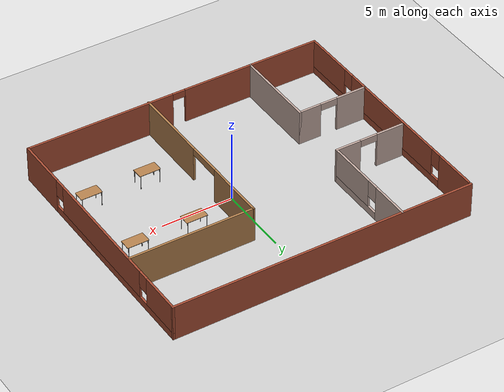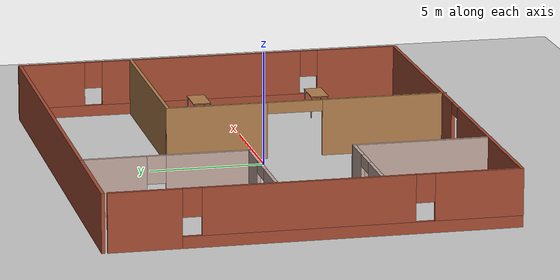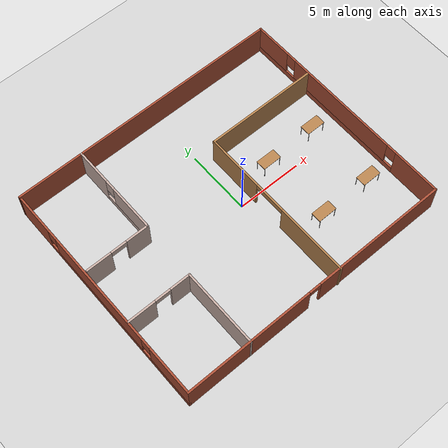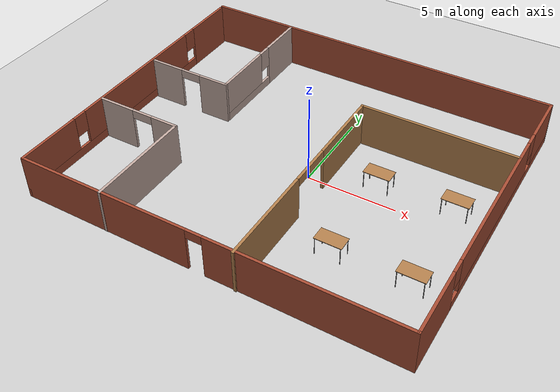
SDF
<sdf version="1.6">
 <world name="default">
  <model name="ground_plane">
   <static>1</static>
   <link name="link">
    <collision name="collision">
     <geometry><plane><normal>0 0 1</normal><size>100 100</size></plane></geometry>
     <surface><friction><ode><mu>100</mu><mu2>50</mu2></ode></friction></surface>
    </collision>
    <visual name="visual">
     <cast_shadows>0</cast_shadows>
     <geometry><plane><normal>0 0 1</normal><size>100 100</size></plane></geometry>
     <material>
      <script><uri>file://media/materials/scripts/gazebo.material</uri><name>Gazebo/Grey</name></script>
     </material>
    </visual>
   </link>
  </model>
  <model name="jun">
   <pose>-0.890868 0.38527 0 0 -0 0</pose>
   <link name="Wall_10">
    <pose>-8.06347 -2.80146 0 0 -0 0</pose>
    <visual name="Wall_10_Visual_0">
     <pose>-1.41738 0 1.25 0 -0 0</pose>
     <geometry><box><size>2.16523 0.15 2.5</size></box></geometry>
     <material>
      <script><uri>file://media/materials/scripts/gazebo.material</uri><name>Gazebo/Grey</name></script>
      <ambient>0.760784 0.662745 0.627451 1</ambient>
     </material>
     <meta><layer>0</layer></meta>
    </visual>
    <collision name="Wall_10_Collision_0">
     <geometry><box><size>2.16523 0.15 2.5</size></box></geometry>
     <pose>-1.41738 0 1.25 0 -0 0</pose>
    </collision>
    <visual name="Wall_10_Visual_1">
     <pose>1.69092 0 1.25 0 -0 0</pose>
     <geometry><box><size>1.61816 0.15 2.5</size></box></geometry>
     <material>
      <script><uri>file://media/materials/scripts/gazebo.material</uri><name>Gazebo/Grey</name></script>
      <ambient>0.760784 0.662745 0.627451 1</ambient>
     </material>
     <meta><layer>0</layer></meta>
    </visual>
    <collision name="Wall_10_Collision_1">
     <geometry><box><size>1.61816 0.15 2.5</size></box></geometry>
     <pose>1.69092 0 1.25 0 -0 0</pose>
    </collision>
    <visual name="Wall_10_Visual_2">
     <pose>0.273537 0 2.25 0 -0 0</pose>
     <geometry><box><size>1.21661 0.15 0.5</size></box></geometry>
     <material>
      <script><uri>file://media/materials/scripts/gazebo.material</uri><name>Gazebo/Grey</name></script>
      <ambient>0.760784 0.662745 0.627451 1</ambient>
     </material>
     <meta><layer>0</layer></meta>
    </visual>
    <collision name="Wall_10_Collision_2">
     <geometry><box><size>1.21661 0.15 0.5</size></box></geometry>
     <pose>0.273537 0 2.25 0 -0 0</pose>
    </collision>
   </link>
   <link name="Wall_11">
    <collision name="Wall_11_Collision">
     <geometry><box><size>6 0.15 2.5</size></box></geometry>
     <pose>0 0 1.25 0 -0 0</pose>
    </collision>
    <visual name="Wall_11_Visual">
     <pose>0 0 1.25 0 -0 0</pose>
     <geometry><box><size>6 0.15 2.5</size></box></geometry>
     <material>
      <script><uri>file://media/materials/scripts/gazebo.material</uri><name>Gazebo/Grey</name></script>
      <ambient>0.760784 0.662745 0.627451 1</ambient>
     </material>
     <meta><layer>0</layer></meta>
    </visual>
    <pose>-5.63847 -5.72646 0 0 0 -1.5708</pose>
   </link>
   <link name="Wall_13">
    <pose>1.87863 -2.53314 0 0 -0 1.5708</pose>
    <visual name="Wall_13_Visual_0">
     <pose>-3.458 0 1.25 0 -0 0</pose>
     <geometry><box><size>5.58399 0.15 2.5</size></box></geometry>
     <material>
      <script><uri>file://media/materials/scripts/gazebo.material</uri><name>Gazebo/Wood</name></script>
      <ambient>1 1 1 1</ambient>
     </material>
     <meta><layer>0</layer></meta>
    </visual>
    <collision name="Wall_13_Collision_0">
     <geometry><box><size>5.58399 0.15 2.5</size></box></geometry>
     <pose>-3.458 0 1.25 0 -0 0</pose>
    </collision>
    <visual name="Wall_13_Visual_1">
     <pose>4.01593 0 1.25 0 -0 0</pose>
     <geometry><box><size>4.46814 0.15 2.5</size></box></geometry>
     <material>
      <script><uri>file://media/materials/scripts/gazebo.material</uri><name>Gazebo/Wood</name></script>
      <ambient>1 1 1 1</ambient>
     </material>
     <meta><layer>0</layer></meta>
    </visual>
    <collision name="Wall_13_Collision_1">
     <geometry><box><size>4.46814 0.15 2.5</size></box></geometry>
     <pose>4.01593 0 1.25 0 -0 0</pose>
    </collision>
    <visual name="Wall_13_Visual_2">
     <pose>0.557927 0 2.25 0 -0 0</pose>
     <geometry><box><size>2.44787 0.15 0.5</size></box></geometry>
     <material>
      <script><uri>file://media/materials/scripts/gazebo.material</uri><name>Gazebo/Wood</name></script>
      <ambient>1 1 1 1</ambient>
     </material>
     <meta><layer>0</layer></meta>
    </visual>
    <collision name="Wall_13_Collision_2">
     <geometry><box><size>2.44787 0.15 0.5</size></box></geometry>
     <pose>0.557927 0 2.25 0 -0 0</pose>
    </collision>
   </link>
   <link name="Wall_14">
    <collision name="Wall_14_Collision">
     <geometry><box><size>8.75 0.15 2.5</size></box></geometry>
     <pose>0 0 1.25 0 -0 0</pose>
    </collision>
    <visual name="Wall_14_Visual">
     <pose>0 0 1.25 0 -0 0</pose>
     <geometry><box><size>8.75 0.15 2.5</size></box></geometry>
     <material>
      <script><uri>file://media/materials/scripts/gazebo.material</uri><name>Gazebo/Wood</name></script>
      <ambient>1 1 1 1</ambient>
     </material>
     <meta><layer>0</layer></meta>
    </visual>
    <pose>6.17863 3.64186 0 0 -0 0</pose>
   </link>
   <link name="Wall_2">
    <pose>-10.55 -0.091861 0 0 0 -1.5708</pose>
    <visual name="Wall_2_Visual_0">
     <pose>-7.09548 0 1.25 0 -0 0</pose>
     <geometry><box><size>3.05903 0.15 2.5</size></box></geometry>
     <material>
      <script><uri>file://media/materials/scripts/gazebo.material</uri><name>Gazebo/Bricks</name></script>
      <ambient>1 1 1 1</ambient>
     </material>
     <meta><layer>0</layer></meta>
    </visual>
    <collision name="Wall_2_Collision_0">
     <geometry><box><size>3.05903 0.15 2.5</size></box></geometry>
     <pose>-7.09548 0 1.25 0 -0 0</pose>
    </collision>
    <visual name="Wall_2_Visual_1">
     <pose>1.52952 0 0.25 0 -0 0</pose>
     <geometry><box><size>14.191 0.15 0.5</size></box></geometry>
     <material>
      <script><uri>file://media/materials/scripts/gazebo.material</uri><name>Gazebo/Bricks</name></script>
      <ambient>1 1 1 1</ambient>
     </material>
     <meta><layer>0</layer></meta>
    </visual>
    <collision name="Wall_2_Collision_1">
     <geometry><box><size>14.191 0.15 0.5</size></box></geometry>
     <pose>1.52952 0 0.25 0 -0 0</pose>
    </collision>
    <visual name="Wall_2_Visual_2">
     <pose>-0.336028 0 1.5 0 -0 0</pose>
     <geometry><box><size>8.85988 0.15 2</size></box></geometry>
     <material>
      <script><uri>file://media/materials/scripts/gazebo.material</uri><name>Gazebo/Bricks</name></script>
      <ambient>1 1 1 1</ambient>
     </material>
     <meta><layer>0</layer></meta>
    </visual>
    <collision name="Wall_2_Collision_2">
     <geometry><box><size>8.85988 0.15 2</size></box></geometry>
     <pose>-0.336028 0 1.5 0 -0 0</pose>
    </collision>
    <visual name="Wall_2_Visual_3">
     <pose>6.75945 0 1.5 0 -0 0</pose>
     <geometry><box><size>3.73109 0.15 2</size></box></geometry>
     <material>
      <script><uri>file://media/materials/scripts/gazebo.material</uri><name>Gazebo/Bricks</name></script>
      <ambient>1 1 1 1</ambient>
     </material>
     <meta><layer>0</layer></meta>
    </visual>
    <collision name="Wall_2_Collision_3">
     <geometry><box><size>3.73109 0.15 2</size></box></geometry>
     <pose>6.75945 0 1.5 0 -0 0</pose>
    </collision>
    <visual name="Wall_2_Visual_4">
     <pose>-5.16597 0 1.9 0 -0 0</pose>
     <geometry><box><size>0.8 0.15 1.2</size></box></geometry>
     <material>
      <script><uri>file://media/materials/scripts/gazebo.material</uri><name>Gazebo/Bricks</name></script>
      <ambient>1 1 1 1</ambient>
     </material>
     <meta><layer>0</layer></meta>
    </visual>
    <collision name="Wall_2_Collision_4">
     <geometry><box><size>0.8 0.15 1.2</size></box></geometry>
     <pose>-5.16597 0 1.9 0 -0 0</pose>
    </collision>
    <visual name="Wall_2_Visual_5">
     <pose>4.49391 0 1.9 0 -0 0</pose>
     <geometry><box><size>0.8 0.15 1.2</size></box></geometry>
     <material>
      <script><uri>file://media/materials/scripts/gazebo.material</uri><name>Gazebo/Bricks</name></script>
      <ambient>1 1 1 1</ambient>
     </material>
     <meta><layer>0</layer></meta>
    </visual>
    <collision name="Wall_2_Collision_5">
     <geometry><box><size>0.8 0.15 1.2</size></box></geometry>
     <pose>4.49391 0 1.9 0 -0 0</pose>
    </collision>
   </link>
   <link name="Wall_3">
    <pose>0 -8.64186 0 0 -0 0</pose>
    <visual name="Wall_3_Visual_0">
     <pose>-5.67492 0 1.25 0 -0 0</pose>
     <geometry><box><size>9.90015 0.15 2.5</size></box></geometry>
     <material>
      <script><uri>file://media/materials/scripts/gazebo.material</uri><name>Gazebo/Bricks</name></script>
      <ambient>1 1 1 1</ambient>
     </material>
     <meta><layer>0</layer></meta>
    </visual>
    <collision name="Wall_3_Collision_0">
     <geometry><box><size>9.90015 0.15 2.5</size></box></geometry>
     <pose>-5.67492 0 1.25 0 -0 0</pose>
    </collision>
    <visual name="Wall_3_Visual_1">
     <pose>5.40008 0 1.25 0 -0 0</pose>
     <geometry><box><size>10.4498 0.15 2.5</size></box></geometry>
     <material>
      <script><uri>file://media/materials/scripts/gazebo.material</uri><name>Gazebo/Bricks</name></script>
      <ambient>1 1 1 1</ambient>
     </material>
     <meta><layer>0</layer></meta>
    </visual>
    <collision name="Wall_3_Collision_1">
     <geometry><box><size>10.4498 0.15 2.5</size></box></geometry>
     <pose>5.40008 0 1.25 0 -0 0</pose>
    </collision>
    <visual name="Wall_3_Visual_2">
     <pose>-0.274845 0 2.25 0 -0 0</pose>
     <geometry><box><size>0.9 0.15 0.5</size></box></geometry>
     <material>
      <script><uri>file://media/materials/scripts/gazebo.material</uri><name>Gazebo/Bricks</name></script>
      <ambient>1 1 1 1</ambient>
     </material>
     <meta><layer>0</layer></meta>
    </visual>
    <collision name="Wall_3_Collision_2">
     <geometry><box><size>0.9 0.15 0.5</size></box></geometry>
     <pose>-0.274845 0 2.25 0 -0 0</pose>
    </collision>
   </link>
   <link name="Wall_4">
    <pose>10.55 0.033139 0 0 -0 1.5708</pose>
    <visual name="Wall_4_Visual_0">
     <pose>-6.88445 0 1.25 0 -0 0</pose>
     <geometry><box><size>3.73109 0.15 2.5</size></box></geometry>
     <material>
      <script><uri>file://media/materials/scripts/gazebo.material</uri><name>Gazebo/Bricks</name></script>
      <ambient>1 1 1 1</ambient>
     </material>
     <meta><layer>0</layer></meta>
    </visual>
    <collision name="Wall_4_Collision_0">
     <geometry><box><size>3.73109 0.15 2.5</size></box></geometry>
     <pose>-6.88445 0 1.25 0 -0 0</pose>
    </collision>
    <visual name="Wall_4_Visual_1">
     <pose>1.86555 0 0.25 0 -0 0</pose>
     <geometry><box><size>13.7689 0.15 0.5</size></box></geometry>
     <material>
      <script><uri>file://media/materials/scripts/gazebo.material</uri><name>Gazebo/Bricks</name></script>
      <ambient>1 1 1 1</ambient>
     </material>
     <meta><layer>0</layer></meta>
    </visual>
    <collision name="Wall_4_Collision_1">
     <geometry><box><size>13.7689 0.15 0.5</size></box></geometry>
     <pose>1.86555 0 0.25 0 -0 0</pose>
    </collision>
    <visual name="Wall_4_Visual_2">
     <pose>0.364848 0 1.5 0 -0 0</pose>
     <geometry><box><size>9.16752 0.15 2</size></box></geometry>
     <material>
      <script><uri>file://media/materials/scripts/gazebo.material</uri><name>Gazebo/Bricks</name></script>
      <ambient>1 1 1 1</ambient>
     </material>
     <meta><layer>0</layer></meta>
    </visual>
    <collision name="Wall_4_Collision_2">
     <geometry><box><size>9.16752 0.15 2</size></box></geometry>
     <pose>0.364848 0 1.5 0 -0 0</pose>
    </collision>
    <visual name="Wall_4_Visual_3">
     <pose>7.2493 0 1.5 0 -0 0</pose>
     <geometry><box><size>3.00139 0.15 2</size></box></geometry>
     <material>
      <script><uri>file://media/materials/scripts/gazebo.material</uri><name>Gazebo/Bricks</name></script>
      <ambient>1 1 1 1</ambient>
     </material>
     <meta><layer>0</layer></meta>
    </visual>
    <collision name="Wall_4_Collision_3">
     <geometry><box><size>3.00139 0.15 2</size></box></geometry>
     <pose>7.2493 0 1.5 0 -0 0</pose>
    </collision>
    <visual name="Wall_4_Visual_4">
     <pose>-4.61891 0 1.9 0 -0 0</pose>
     <geometry><box><size>0.8 0.15 1.2</size></box></geometry>
     <material>
      <script><uri>file://media/materials/scripts/gazebo.material</uri><name>Gazebo/Bricks</name></script>
      <ambient>1 1 1 1</ambient>
     </material>
     <meta><layer>0</layer></meta>
    </visual>
    <collision name="Wall_4_Collision_4">
     <geometry><box><size>0.8 0.15 1.2</size></box></geometry>
     <pose>-4.61891 0 1.9 0 -0 0</pose>
    </collision>
    <visual name="Wall_4_Visual_5">
     <pose>5.34861 0 1.9 0 -0 0</pose>
     <geometry><box><size>0.8 0.15 1.2</size></box></geometry>
     <material>
      <script><uri>file://media/materials/scripts/gazebo.material</uri><name>Gazebo/Bricks</name></script>
      <ambient>1 1 1 1</ambient>
     </material>
     <meta><layer>0</layer></meta>
    </visual>
    <collision name="Wall_4_Collision_5">
     <geometry><box><size>0.8 0.15 1.2</size></box></geometry>
     <pose>5.34861 0 1.9 0 -0 0</pose>
    </collision>
   </link>
   <link name="Wall_5">
    <collision name="Wall_5_Collision">
     <geometry><box><size>21.25 0.15 2.5</size></box></geometry>
     <pose>0 0 1.25 0 -0 0</pose>
    </collision>
    <visual name="Wall_5_Visual">
     <pose>0 0 1.25 0 -0 0</pose>
     <geometry><box><size>21.25 0.15 2.5</size></box></geometry>
     <material>
      <script><uri>file://media/materials/scripts/gazebo.material</uri><name>Gazebo/Bricks</name></script>
      <ambient>1 1 1 1</ambient>
     </material>
     <meta><layer>0</layer></meta>
    </visual>
    <pose>0 8.70814 0 0 -0 3.14159</pose>
   </link>
   <link name="Wall_7">
    <pose>-5.50471 5.15425 0 0 0 -1.5708</pose>
    <visual name="Wall_7_Visual_0">
     <pose>-2.21854 0 1.25 0 -0 0</pose>
     <geometry><box><size>2.81292 0.15 2.5</size></box></geometry>
     <material>
      <script><uri>file://media/materials/scripts/gazebo.material</uri><name>Gazebo/Grey</name></script>
      <ambient>0.760784 0.662745 0.627451 1</ambient>
     </material>
     <meta><layer>0</layer></meta>
    </visual>
    <collision name="Wall_7_Collision_0">
     <geometry><box><size>2.81292 0.15 2.5</size></box></geometry>
     <pose>-2.21854 0 1.25 0 -0 0</pose>
    </collision>
    <visual name="Wall_7_Visual_1">
     <pose>1.40646 0 0.25 0 -0 0</pose>
     <geometry><box><size>4.43708 0.15 0.5</size></box></geometry>
     <material>
      <script><uri>file://media/materials/scripts/gazebo.material</uri><name>Gazebo/Grey</name></script>
      <ambient>0.760784 0.662745 0.627451 1</ambient>
     </material>
     <meta><layer>0</layer></meta>
    </visual>
    <collision name="Wall_7_Collision_1">
     <geometry><box><size>4.43708 0.15 0.5</size></box></geometry>
     <pose>1.40646 0 0.25 0 -0 0</pose>
    </collision>
    <visual name="Wall_7_Visual_2">
     <pose>1.80646 0 1.5 0 -0 0</pose>
     <geometry><box><size>3.63708 0.15 2</size></box></geometry>
     <material>
      <script><uri>file://media/materials/scripts/gazebo.material</uri><name>Gazebo/Grey</name></script>
      <ambient>0.760784 0.662745 0.627451 1</ambient>
     </material>
     <meta><layer>0</layer></meta>
    </visual>
    <collision name="Wall_7_Collision_2">
     <geometry><box><size>3.63708 0.15 2</size></box></geometry>
     <pose>1.80646 0 1.5 0 -0 0</pose>
    </collision>
    <visual name="Wall_7_Visual_3">
     <pose>-0.412078 0 1.9 0 -0 0</pose>
     <geometry><box><size>0.8 0.15 1.2</size></box></geometry>
     <material>
      <script><uri>file://media/materials/scripts/gazebo.material</uri><name>Gazebo/Grey</name></script>
      <ambient>0.760784 0.662745 0.627451 1</ambient>
     </material>
     <meta><layer>0</layer></meta>
    </visual>
    <collision name="Wall_7_Collision_3">
     <geometry><box><size>0.8 0.15 1.2</size></box></geometry>
     <pose>-0.412078 0 1.9 0 -0 0</pose>
    </collision>
   </link>
   <link name="Wall_8">
    <pose>-7.92971 1.60425 0 0 -0 3.14159</pose>
    <visual name="Wall_8_Visual_0">
     <pose>-1.59328 0 1.25 0 -0 0</pose>
     <geometry><box><size>1.81344 0.15 2.5</size></box></geometry>
     <material>
      <script><uri>file://media/materials/scripts/gazebo.material</uri><name>Gazebo/Grey</name></script>
      <ambient>0.760784 0.662745 0.627451 1</ambient>
     </material>
     <meta><layer>0</layer></meta>
    </visual>
    <collision name="Wall_8_Collision_0">
     <geometry><box><size>1.81344 0.15 2.5</size></box></geometry>
     <pose>-1.59328 0 1.25 0 -0 0</pose>
    </collision>
    <visual name="Wall_8_Visual_1">
     <pose>1.51503 0 1.25 0 -0 0</pose>
     <geometry><box><size>1.96995 0.15 2.5</size></box></geometry>
     <material>
      <script><uri>file://media/materials/scripts/gazebo.material</uri><name>Gazebo/Grey</name></script>
      <ambient>0.760784 0.662745 0.627451 1</ambient>
     </material>
     <meta><layer>0</layer></meta>
    </visual>
    <collision name="Wall_8_Collision_1">
     <geometry><box><size>1.96995 0.15 2.5</size></box></geometry>
     <pose>1.51503 0 1.25 0 -0 0</pose>
    </collision>
    <visual name="Wall_8_Visual_2">
     <pose>-0.078251 0 2.25 0 -0 0</pose>
     <geometry><box><size>1.21661 0.15 0.5</size></box></geometry>
     <material>
      <script><uri>file://media/materials/scripts/gazebo.material</uri><name>Gazebo/Grey</name></script>
      <ambient>0.760784 0.662745 0.627451 1</ambient>
     </material>
     <meta><layer>0</layer></meta>
    </visual>
    <collision name="Wall_8_Collision_2">
     <geometry><box><size>1.21661 0.15 0.5</size></box></geometry>
     <pose>-0.078251 0 2.25 0 -0 0</pose>
    </collision>
   </link>
   <static>1</static>
  </model>
  <model name="table">
   <static>1</static>
   <link name="link">
    <collision name="surface">
     <pose>0 0 1 0 -0 0</pose>
     <geometry><box><size>1.5 0.8 0.03</size></box></geometry>
     <surface><friction><ode><mu>0.6</mu><mu2>0.6</mu2></ode></friction></surface>
    </collision>
    <visual name="visual1">
     <pose>0 0 1 0 -0 0</pose>
     <geometry><box><size>1.5 0.8 0.03</size></box></geometry>
     <material>
      <script><uri>file://media/materials/scripts/gazebo.material</uri><name>Gazebo/Wood</name></script>
     </material>
    </visual>
    <collision name="front_left_leg">
     <pose>0.68 0.38 0.5 0 -0 0</pose>
     <geometry><cylinder><radius>0.02</radius><length>1</length></cylinder></geometry>
    </collision>
    <visual name="front_left_leg">
     <pose>0.68 0.38 0.5 0 -0 0</pose>
     <geometry><cylinder><radius>0.02</radius><length>1</length></cylinder></geometry>
     <material>
      <script><uri>file://media/materials/scripts/gazebo.material</uri><name>Gazebo/Grey</name></script>
     </material>
    </visual>
    <collision name="front_right_leg">
     <pose>0.68 -0.38 0.5 0 -0 0</pose>
     <geometry><cylinder><radius>0.02</radius><length>1</length></cylinder></geometry>
    </collision>
    <visual name="front_right_leg">
     <pose>0.68 -0.38 0.5 0 -0 0</pose>
     <geometry><cylinder><radius>0.02</radius><length>1</length></cylinder></geometry>
     <material>
      <script><uri>file://media/materials/scripts/gazebo.material</uri><name>Gazebo/Grey</name></script>
     </material>
    </visual>
    <collision name="back_right_leg">
     <pose>-0.68 -0.38 0.5 0 -0 0</pose>
     <geometry><cylinder><radius>0.02</radius><length>1</length></cylinder></geometry>
    </collision>
    <visual name="back_right_leg">
     <pose>-0.68 -0.38 0.5 0 -0 0</pose>
     <geometry><cylinder><radius>0.02</radius><length>1</length></cylinder></geometry>
     <material>
      <script><uri>file://media/materials/scripts/gazebo.material</uri><name>Gazebo/Grey</name></script>
     </material>
    </visual>
    <collision name="back_left_leg">
     <pose>-0.68 0.38 0.5 0 -0 0</pose>
     <geometry><cylinder><radius>0.02</radius><length>1</length></cylinder></geometry>
    </collision>
    <visual name="back_left_leg">
     <pose>-0.68 0.38 0.5 0 -0 0</pose>
     <geometry><cylinder><radius>0.02</radius><length>1</length></cylinder></geometry>
     <material>
      <script><uri>file://media/materials/scripts/gazebo.material</uri><name>Gazebo/Grey</name></script>
     </material>
    </visual>
   </link>
   <pose>3.4571 1.19534 0 0 -0 0</pose>
  </model>
  <model name="table_0">
   <static>1</static>
   <link name="link">
    <collision name="surface">
     <pose>0 0 1 0 -0 0</pose>
     <geometry><box><size>1.5 0.8 0.03</size></box></geometry>
     <surface><friction><ode><mu>0.6</mu><mu2>0.6</mu2></ode></friction></surface>
    </collision>
    <visual name="visual1">
     <pose>0 0 1 0 -0 0</pose>
     <geometry><box><size>1.5 0.8 0.03</size></box></geometry>
     <material>
      <script><uri>file://media/materials/scripts/gazebo.material</uri><name>Gazebo/Wood</name></script>
     </material>
    </visual>
    <collision name="front_left_leg">
     <pose>0.68 0.38 0.5 0 -0 0</pose>
     <geometry><cylinder><radius>0.02</radius><length>1</length></cylinder></geometry>
    </collision>
    <visual name="front_left_leg">
     <pose>0.68 0.38 0.5 0 -0 0</pose>
     <geometry><cylinder><radius>0.02</radius><length>1</length></cylinder></geometry>
     <material>
      <script><uri>file://media/materials/scripts/gazebo.material</uri><name>Gazebo/Grey</name></script>
     </material>
    </visual>
    <collision name="front_right_leg">
     <pose>0.68 -0.38 0.5 0 -0 0</pose>
     <geometry><cylinder><radius>0.02</radius><length>1</length></cylinder></geometry>
    </collision>
    <visual name="front_right_leg">
     <pose>0.68 -0.38 0.5 0 -0 0</pose>
     <geometry><cylinder><radius>0.02</radius><length>1</length></cylinder></geometry>
     <material>
      <script><uri>file://media/materials/scripts/gazebo.material</uri><name>Gazebo/Grey</name></script>
     </material>
    </visual>
    <collision name="back_right_leg">
     <pose>-0.68 -0.38 0.5 0 -0 0</pose>
     <geometry><cylinder><radius>0.02</radius><length>1</length></cylinder></geometry>
    </collision>
    <visual name="back_right_leg">
     <pose>-0.68 -0.38 0.5 0 -0 0</pose>
     <geometry><cylinder><radius>0.02</radius><length>1</length></cylinder></geometry>
     <material>
      <script><uri>file://media/materials/scripts/gazebo.material</uri><name>Gazebo/Grey</name></script>
     </material>
    </visual>
    <collision name="back_left_leg">
     <pose>-0.68 0.38 0.5 0 -0 0</pose>
     <geometry><cylinder><radius>0.02</radius><length>1</length></cylinder></geometry>
    </collision>
    <visual name="back_left_leg">
     <pose>-0.68 0.38 0.5 0 -0 0</pose>
     <geometry><cylinder><radius>0.02</radius><length>1</length></cylinder></geometry>
     <material>
      <script><uri>file://media/materials/scripts/gazebo.material</uri><name>Gazebo/Grey</name></script>
     </material>
    </visual>
   </link>
   <pose>7.66003 1.30642 0 0 -0 0</pose>
  </model>
  <model name="table_1">
   <static>1</static>
   <link name="link">
    <collision name="surface">
     <pose>0 0 1 0 -0 0</pose>
     <geometry><box><size>1.5 0.8 0.03</size></box></geometry>
     <surface><friction><ode><mu>0.6</mu><mu2>0.6</mu2></ode></friction></surface>
    </collision>
    <visual name="visual1">
     <pose>0 0 1 0 -0 0</pose>
     <geometry><box><size>1.5 0.8 0.03</size></box></geometry>
     <material>
      <script><uri>file://media/materials/scripts/gazebo.material</uri><name>Gazebo/Wood</name></script>
     </material>
    </visual>
    <collision name="front_left_leg">
     <pose>0.68 0.38 0.5 0 -0 0</pose>
     <geometry><cylinder><radius>0.02</radius><length>1</length></cylinder></geometry>
    </collision>
    <visual name="front_left_leg">
     <pose>0.68 0.38 0.5 0 -0 0</pose>
     <geometry><cylinder><radius>0.02</radius><length>1</length></cylinder></geometry>
     <material>
      <script><uri>file://media/materials/scripts/gazebo.material</uri><name>Gazebo/Grey</name></script>
     </material>
    </visual>
    <collision name="front_right_leg">
     <pose>0.68 -0.38 0.5 0 -0 0</pose>
     <geometry><cylinder><radius>0.02</radius><length>1</length></cylinder></geometry>
    </collision>
    <visual name="front_right_leg">
     <pose>0.68 -0.38 0.5 0 -0 0</pose>
     <geometry><cylinder><radius>0.02</radius><length>1</length></cylinder></geometry>
     <material>
      <script><uri>file://media/materials/scripts/gazebo.material</uri><name>Gazebo/Grey</name></script>
     </material>
    </visual>
    <collision name="back_right_leg">
     <pose>-0.68 -0.38 0.5 0 -0 0</pose>
     <geometry><cylinder><radius>0.02</radius><length>1</length></cylinder></geometry>
    </collision>
    <visual name="back_right_leg">
     <pose>-0.68 -0.38 0.5 0 -0 0</pose>
     <geometry><cylinder><radius>0.02</radius><length>1</length></cylinder></geometry>
     <material>
      <script><uri>file://media/materials/scripts/gazebo.material</uri><name>Gazebo/Grey</name></script>
     </material>
    </visual>
    <collision name="back_left_leg">
     <pose>-0.68 0.38 0.5 0 -0 0</pose>
     <geometry><cylinder><radius>0.02</radius><length>1</length></cylinder></geometry>
    </collision>
    <visual name="back_left_leg">
     <pose>-0.68 0.38 0.5 0 -0 0</pose>
     <geometry><cylinder><radius>0.02</radius><length>1</length></cylinder></geometry>
     <material>
      <script><uri>file://media/materials/scripts/gazebo.material</uri><name>Gazebo/Grey</name></script>
     </material>
    </visual>
   </link>
   <pose>3.59438 -4.18045 0 0 -0 0</pose>
  </model>
  <model name="table_2">
   <static>1</static>
   <link name="link">
    <collision name="surface">
     <pose>0 0 1 0 -0 0</pose>
     <geometry><box><size>1.5 0.8 0.03</size></box></geometry>
     <surface><friction><ode><mu>0.6</mu><mu2>0.6</mu2></ode></friction></surface>
    </collision>
    <visual name="visual1">
     <pose>0 0 1 0 -0 0</pose>
     <geometry><box><size>1.5 0.8 0.03</size></box></geometry>
     <material>
      <script><uri>file://media/materials/scripts/gazebo.material</uri><name>Gazebo/Wood</name></script>
     </material>
    </visual>
    <collision name="front_left_leg">
     <pose>0.68 0.38 0.5 0 -0 0</pose>
     <geometry><cylinder><radius>0.02</radius><length>1</length></cylinder></geometry>
    </collision>
    <visual name="front_left_leg">
     <pose>0.68 0.38 0.5 0 -0 0</pose>
     <geometry><cylinder><radius>0.02</radius><length>1</length></cylinder></geometry>
     <material>
      <script><uri>file://media/materials/scripts/gazebo.material</uri><name>Gazebo/Grey</name></script>
     </material>
    </visual>
    <collision name="front_right_leg">
     <pose>0.68 -0.38 0.5 0 -0 0</pose>
     <geometry><cylinder><radius>0.02</radius><length>1</length></cylinder></geometry>
    </collision>
    <visual name="front_right_leg">
     <pose>0.68 -0.38 0.5 0 -0 0</pose>
     <geometry><cylinder><radius>0.02</radius><length>1</length></cylinder></geometry>
     <material>
      <script><uri>file://media/materials/scripts/gazebo.material</uri><name>Gazebo/Grey</name></script>
     </material>
    </visual>
    <collision name="back_right_leg">
     <pose>-0.68 -0.38 0.5 0 -0 0</pose>
     <geometry><cylinder><radius>0.02</radius><length>1</length></cylinder></geometry>
    </collision>
    <visual name="back_right_leg">
     <pose>-0.68 -0.38 0.5 0 -0 0</pose>
     <geometry><cylinder><radius>0.02</radius><length>1</length></cylinder></geometry>
     <material>
      <script><uri>file://media/materials/scripts/gazebo.material</uri><name>Gazebo/Grey</name></script>
     </material>
    </visual>
    <collision name="back_left_leg">
     <pose>-0.68 0.38 0.5 0 -0 0</pose>
     <geometry><cylinder><radius>0.02</radius><length>1</length></cylinder></geometry>
    </collision>
    <visual name="back_left_leg">
     <pose>-0.68 0.38 0.5 0 -0 0</pose>
     <geometry><cylinder><radius>0.02</radius><length>1</length></cylinder></geometry>
     <material>
      <script><uri>file://media/materials/scripts/gazebo.material</uri><name>Gazebo/Grey</name></script>
     </material>
    </visual>
   </link>
   <pose>7.76265 -4.13802 0 0 -0 0</pose>
  </model>
 </world>
</sdf>
